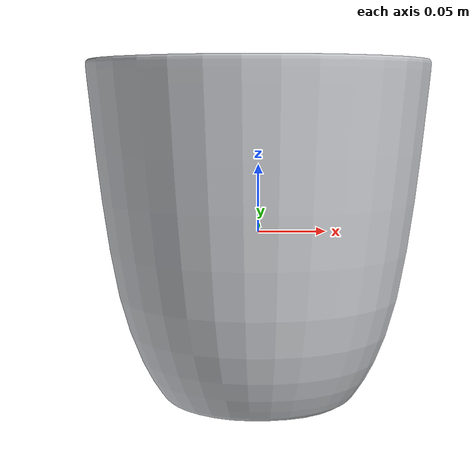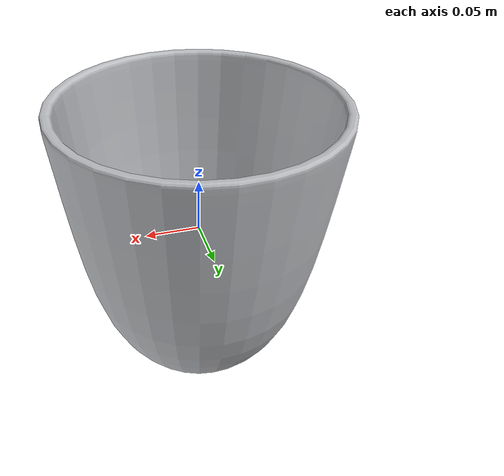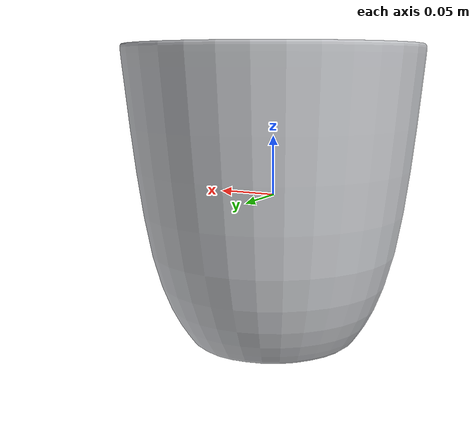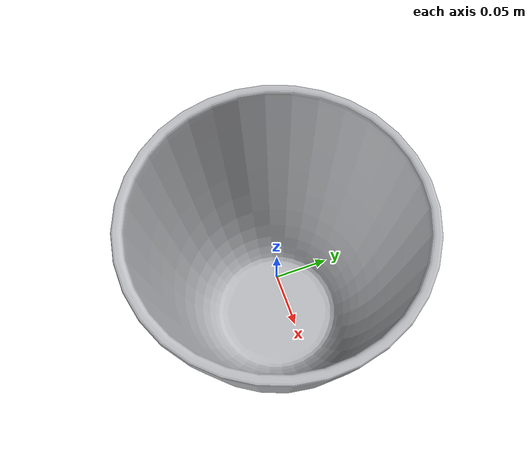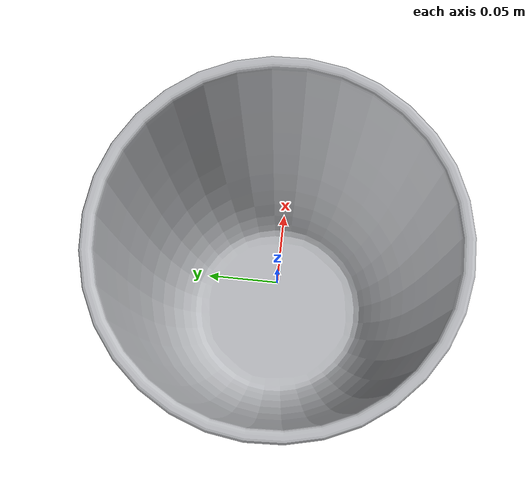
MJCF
<?xml version="1.0" ?>
<mujoco model="flowerpot">
	<compiler meshdir="flowerpot/meshes" texturedir="flowerpot/textures" angle="radian" autolimits="true" balanceinertia="true" boundmass="0.000001" boundinertia="0.000001"/>
	<default>
		<default class="visual">
			<geom contype="0" conaffinity="0"/>
		</default>
		<default class="collision">
			<geom rgba="1.0 0.0 0.0 0.0"/>
		</default>
	</default>
	<asset>
		<mesh name="Flowerpot" file="stl/Flowerpot.stl" scale="1.0 1.0 1.0"/>
		<mesh name="Flowerpot_001" file="stl/Flowerpot_001.stl" scale="1.0 1.0 1.0"/>
		<mesh name="Flowerpot_002" file="stl/Flowerpot_002.stl" scale="1.0 1.0 1.0"/>
		<mesh name="Flowerpot_003" file="stl/Flowerpot_003.stl" scale="1.0 1.0 1.0"/>
		<mesh name="Flowerpot_004" file="stl/Flowerpot_004.stl" scale="1.0 1.0 1.0"/>
		<mesh name="Flowerpot_005" file="stl/Flowerpot_005.stl" scale="1.0 1.0 1.0"/>
		<mesh name="Flowerpot_006" file="stl/Flowerpot_006.stl" scale="1.0 1.0 1.0"/>
		<mesh name="Flowerpot_007" file="stl/Flowerpot_007.stl" scale="1.0 1.0 1.0"/>
		<mesh name="Flowerpot_008" file="stl/Flowerpot_008.stl" scale="1.0 1.0 1.0"/>
		<mesh name="Flowerpot_009" file="stl/Flowerpot_009.stl" scale="1.0 1.0 1.0"/>
		<mesh name="Flowerpot_010" file="stl/Flowerpot_010.stl" scale="1.0 1.0 1.0"/>
		<mesh name="Flowerpot_011" file="stl/Flowerpot_011.stl" scale="1.0 1.0 1.0"/>
		<mesh name="Flowerpot_012" file="stl/Flowerpot_012.stl" scale="1.0 1.0 1.0"/>
		<mesh name="Flowerpot_013" file="stl/Flowerpot_013.stl" scale="1.0 1.0 1.0"/>
		<mesh name="Flowerpot_014" file="stl/Flowerpot_014.stl" scale="1.0 1.0 1.0"/>
		<mesh name="Flowerpot_015" file="stl/Flowerpot_015.stl" scale="1.0 1.0 1.0"/>
		<mesh name="Flowerpot_016" file="stl/Flowerpot_016.stl" scale="1.0 1.0 1.0"/>
		<mesh name="Flowerpot_017" file="stl/Flowerpot_017.stl" scale="1.0 1.0 1.0"/>
		<mesh name="Flowerpot_018" file="stl/Flowerpot_018.stl" scale="1.0 1.0 1.0"/>
		<mesh name="Flowerpot_019" file="stl/Flowerpot_019.stl" scale="1.0 1.0 1.0"/>
		<mesh name="Flowerpot_020" file="stl/Flowerpot_020.stl" scale="1.0 1.0 1.0"/>
		<mesh name="Flowerpot_021" file="stl/Flowerpot_021.stl" scale="1.0 1.0 1.0"/>
		<mesh name="Flowerpot_022" file="stl/Flowerpot_022.stl" scale="1.0 1.0 1.0"/>
		<mesh name="Flowerpot_023" file="stl/Flowerpot_023.stl" scale="1.0 1.0 1.0"/>
		<mesh name="Flowerpot_024" file="stl/Flowerpot_024.stl" scale="1.0 1.0 1.0"/>
		<mesh name="Flowerpot_025" file="stl/Flowerpot_025.stl" scale="1.0 1.0 1.0"/>
		<mesh name="Flowerpot_026" file="stl/Flowerpot_026.stl" scale="1.0 1.0 1.0"/>
		<mesh name="Flowerpot_027" file="stl/Flowerpot_027.stl" scale="1.0 1.0 1.0"/>
		<mesh name="Flowerpot_028" file="stl/Flowerpot_028.stl" scale="1.0 1.0 1.0"/>
		<mesh name="Flowerpot_029" file="stl/Flowerpot_029.stl" scale="1.0 1.0 1.0"/>
		<mesh name="Flowerpot_030" file="stl/Flowerpot_030.stl" scale="1.0 1.0 1.0"/>
		<mesh name="Flowerpot_031" file="stl/Flowerpot_031.stl" scale="1.0 1.0 1.0"/>
		<mesh name="Flowerpot_032" file="stl/Flowerpot_032.stl" scale="1.0 1.0 1.0"/>
		<mesh name="Flowerpot_033" file="stl/Flowerpot_033.stl" scale="1.0 1.0 1.0"/>
		<mesh name="Flowerpot_034" file="stl/Flowerpot_034.stl" scale="1.0 1.0 1.0"/>
		<mesh name="Flowerpot_035" file="stl/Flowerpot_035.stl" scale="1.0 1.0 1.0"/>
		<mesh name="Flowerpot_036" file="stl/Flowerpot_036.stl" scale="1.0 1.0 1.0"/>
		<mesh name="Flowerpot_037" file="stl/Flowerpot_037.stl" scale="1.0 1.0 1.0"/>
		<mesh name="Flowerpot_038" file="stl/Flowerpot_038.stl" scale="1.0 1.0 1.0"/>
		<mesh name="Flowerpot_039" file="stl/Flowerpot_039.stl" scale="1.0 1.0 1.0"/>
		<mesh name="Flowerpot_040" file="stl/Flowerpot_040.stl" scale="1.0 1.0 1.0"/>
		<mesh name="Flowerpot_041" file="stl/Flowerpot_041.stl" scale="1.0 1.0 1.0"/>
		<mesh name="Flowerpot_042" file="stl/Flowerpot_042.stl" scale="1.0 1.0 1.0"/>
		<mesh name="Flowerpot_043" file="stl/Flowerpot_043.stl" scale="1.0 1.0 1.0"/>
		<mesh name="Flowerpot_044" file="stl/Flowerpot_044.stl" scale="1.0 1.0 1.0"/>
		<mesh name="Flowerpot_045" file="stl/Flowerpot_045.stl" scale="1.0 1.0 1.0"/>
		<mesh name="Flowerpot_046" file="stl/Flowerpot_046.stl" scale="1.0 1.0 1.0"/>
		<mesh name="Flowerpot_047" file="stl/Flowerpot_047.stl" scale="1.0 1.0 1.0"/>
		<mesh name="Flowerpot_048" file="stl/Flowerpot_048.stl" scale="1.0 1.0 1.0"/>
		<mesh name="Flowerpot_049" file="stl/Flowerpot_049.stl" scale="1.0 1.0 1.0"/>
		<mesh name="Flowerpot_050" file="stl/Flowerpot_050.stl" scale="1.0 1.0 1.0"/>
		<mesh name="Flowerpot_051" file="stl/Flowerpot_051.stl" scale="1.0 1.0 1.0"/>
		<mesh name="Flowerpot_052" file="stl/Flowerpot_052.stl" scale="1.0 1.0 1.0"/>
		<mesh name="Flowerpot_053" file="stl/Flowerpot_053.stl" scale="1.0 1.0 1.0"/>
		<material name="M_Flowerpot" rgba="0.7376999855041504 0.7451000213623047 0.7609000205993652 1.0" emission="0.0"/>
	</asset>
	<worldbody>
		<body name="flowerpot" pos="0.0 0.0 0.0" quat="1.0 0.0 0.0 0.0">
			<inertial mass="3.7099127769470215" pos="3.031487949556322e-08 -1.117605652467546e-08 0.0027141293976455927" quat="0.6975465416908264 0.11588457971811295 -0.6975463628768921 0.115882009267807" diaginertia="0.03945529833436012 0.04177573695778847 0.041775744408369064"/>
			<geom name="Flowerpot" type="mesh" pos="0.0 0.0 0.0" quat="1.0 0.0 0.0 0.0" mesh="Flowerpot" material="M_Flowerpot" class="visual"/>
			<geom name="Flowerpot_001" type="mesh" pos="0.0 0.0 0.0" quat="1.0 0.0 0.0 0.0" mesh="Flowerpot_001" class="collision"/>
			<geom name="Flowerpot_002" type="mesh" pos="0.0 0.0 0.0" quat="1.0 0.0 0.0 0.0" mesh="Flowerpot_002" class="collision"/>
			<geom name="Flowerpot_003" type="mesh" pos="0.0 0.0 0.0" quat="1.0 0.0 0.0 0.0" mesh="Flowerpot_003" class="collision"/>
			<geom name="Flowerpot_004" type="mesh" pos="0.0 0.0 0.0" quat="1.0 0.0 0.0 0.0" mesh="Flowerpot_004" class="collision"/>
			<geom name="Flowerpot_005" type="mesh" pos="0.0 0.0 0.0" quat="1.0 0.0 0.0 0.0" mesh="Flowerpot_005" class="collision"/>
			<geom name="Flowerpot_006" type="mesh" pos="0.0 0.0 0.0" quat="1.0 0.0 0.0 0.0" mesh="Flowerpot_006" class="collision"/>
			<geom name="Flowerpot_007" type="mesh" pos="0.0 0.0 0.0" quat="1.0 0.0 0.0 0.0" mesh="Flowerpot_007" class="collision"/>
			<geom name="Flowerpot_008" type="mesh" pos="0.0 0.0 0.0" quat="1.0 0.0 0.0 0.0" mesh="Flowerpot_008" class="collision"/>
			<geom name="Flowerpot_009" type="mesh" pos="0.0 0.0 0.0" quat="1.0 0.0 0.0 0.0" mesh="Flowerpot_009" class="collision"/>
			<geom name="Flowerpot_010" type="mesh" pos="0.0 0.0 0.0" quat="1.0 0.0 0.0 0.0" mesh="Flowerpot_010" class="collision"/>
			<geom name="Flowerpot_011" type="mesh" pos="0.0 0.0 0.0" quat="1.0 0.0 0.0 0.0" mesh="Flowerpot_011" class="collision"/>
			<geom name="Flowerpot_012" type="mesh" pos="0.0 0.0 0.0" quat="1.0 0.0 0.0 0.0" mesh="Flowerpot_012" class="collision"/>
			<geom name="Flowerpot_013" type="mesh" pos="0.0 0.0 0.0" quat="1.0 0.0 0.0 0.0" mesh="Flowerpot_013" class="collision"/>
			<geom name="Flowerpot_014" type="mesh" pos="0.0 0.0 0.0" quat="1.0 0.0 0.0 0.0" mesh="Flowerpot_014" class="collision"/>
			<geom name="Flowerpot_015" type="mesh" pos="0.0 0.0 0.0" quat="1.0 0.0 0.0 0.0" mesh="Flowerpot_015" class="collision"/>
			<geom name="Flowerpot_016" type="mesh" pos="0.0 0.0 0.0" quat="1.0 0.0 0.0 0.0" mesh="Flowerpot_016" class="collision"/>
			<geom name="Flowerpot_017" type="mesh" pos="0.0 0.0 0.0" quat="1.0 0.0 0.0 0.0" mesh="Flowerpot_017" class="collision"/>
			<geom name="Flowerpot_018" type="mesh" pos="0.0 0.0 0.0" quat="1.0 0.0 0.0 0.0" mesh="Flowerpot_018" class="collision"/>
			<geom name="Flowerpot_019" type="mesh" pos="0.0 0.0 0.0" quat="1.0 0.0 0.0 0.0" mesh="Flowerpot_019" class="collision"/>
			<geom name="Flowerpot_020" type="mesh" pos="0.0 0.0 0.0" quat="1.0 0.0 0.0 0.0" mesh="Flowerpot_020" class="collision"/>
			<geom name="Flowerpot_021" type="mesh" pos="0.0 0.0 0.0" quat="1.0 0.0 0.0 0.0" mesh="Flowerpot_021" class="collision"/>
			<geom name="Flowerpot_022" type="mesh" pos="0.0 0.0 0.0" quat="1.0 0.0 0.0 0.0" mesh="Flowerpot_022" class="collision"/>
			<geom name="Flowerpot_023" type="mesh" pos="0.0 0.0 0.0" quat="1.0 0.0 0.0 0.0" mesh="Flowerpot_023" class="collision"/>
			<geom name="Flowerpot_024" type="mesh" pos="0.0 0.0 0.0" quat="1.0 0.0 0.0 0.0" mesh="Flowerpot_024" class="collision"/>
			<geom name="Flowerpot_025" type="mesh" pos="0.0 0.0 0.0" quat="1.0 0.0 0.0 0.0" mesh="Flowerpot_025" class="collision"/>
			<geom name="Flowerpot_026" type="mesh" pos="0.0 0.0 0.0" quat="1.0 0.0 0.0 0.0" mesh="Flowerpot_026" class="collision"/>
			<geom name="Flowerpot_027" type="mesh" pos="0.0 0.0 0.0" quat="1.0 0.0 0.0 0.0" mesh="Flowerpot_027" class="collision"/>
			<geom name="Flowerpot_028" type="mesh" pos="0.0 0.0 0.0" quat="1.0 0.0 0.0 0.0" mesh="Flowerpot_028" class="collision"/>
			<geom name="Flowerpot_029" type="mesh" pos="0.0 0.0 0.0" quat="1.0 0.0 0.0 0.0" mesh="Flowerpot_029" class="collision"/>
			<geom name="Flowerpot_030" type="mesh" pos="0.0 0.0 0.0" quat="1.0 0.0 0.0 0.0" mesh="Flowerpot_030" class="collision"/>
			<geom name="Flowerpot_031" type="mesh" pos="0.0 0.0 0.0" quat="1.0 0.0 0.0 0.0" mesh="Flowerpot_031" class="collision"/>
			<geom name="Flowerpot_032" type="mesh" pos="0.0 0.0 0.0" quat="1.0 0.0 0.0 0.0" mesh="Flowerpot_032" class="collision"/>
			<geom name="Flowerpot_033" type="mesh" pos="0.0 0.0 0.0" quat="1.0 0.0 0.0 0.0" mesh="Flowerpot_033" class="collision"/>
			<geom name="Flowerpot_034" type="mesh" pos="0.0 0.0 0.0" quat="1.0 0.0 0.0 0.0" mesh="Flowerpot_034" class="collision"/>
			<geom name="Flowerpot_035" type="mesh" pos="0.0 0.0 0.0" quat="1.0 0.0 0.0 0.0" mesh="Flowerpot_035" class="collision"/>
			<geom name="Flowerpot_036" type="mesh" pos="0.0 0.0 0.0" quat="1.0 0.0 0.0 0.0" mesh="Flowerpot_036" class="collision"/>
			<geom name="Flowerpot_037" type="mesh" pos="0.0 0.0 0.0" quat="1.0 0.0 0.0 0.0" mesh="Flowerpot_037" class="collision"/>
			<geom name="Flowerpot_038" type="mesh" pos="0.0 0.0 0.0" quat="1.0 0.0 0.0 0.0" mesh="Flowerpot_038" class="collision"/>
			<geom name="Flowerpot_039" type="mesh" pos="0.0 0.0 0.0" quat="1.0 0.0 0.0 0.0" mesh="Flowerpot_039" class="collision"/>
			<geom name="Flowerpot_040" type="mesh" pos="0.0 0.0 0.0" quat="1.0 0.0 0.0 0.0" mesh="Flowerpot_040" class="collision"/>
			<geom name="Flowerpot_041" type="mesh" pos="0.0 0.0 0.0" quat="1.0 0.0 0.0 0.0" mesh="Flowerpot_041" class="collision"/>
			<geom name="Flowerpot_042" type="mesh" pos="0.0 0.0 0.0" quat="1.0 0.0 0.0 0.0" mesh="Flowerpot_042" class="collision"/>
			<geom name="Flowerpot_043" type="mesh" pos="0.0 0.0 0.0" quat="1.0 0.0 0.0 0.0" mesh="Flowerpot_043" class="collision"/>
			<geom name="Flowerpot_044" type="mesh" pos="0.0 0.0 0.0" quat="1.0 0.0 0.0 0.0" mesh="Flowerpot_044" class="collision"/>
			<geom name="Flowerpot_045" type="mesh" pos="0.0 0.0 0.0" quat="1.0 0.0 0.0 0.0" mesh="Flowerpot_045" class="collision"/>
			<geom name="Flowerpot_046" type="mesh" pos="0.0 0.0 0.0" quat="1.0 0.0 0.0 0.0" mesh="Flowerpot_046" class="collision"/>
			<geom name="Flowerpot_047" type="mesh" pos="0.0 0.0 0.0" quat="1.0 0.0 0.0 0.0" mesh="Flowerpot_047" class="collision"/>
			<geom name="Flowerpot_048" type="mesh" pos="0.0 0.0 0.0" quat="1.0 0.0 0.0 0.0" mesh="Flowerpot_048" class="collision"/>
			<geom name="Flowerpot_049" type="mesh" pos="0.0 0.0 0.0" quat="1.0 0.0 0.0 0.0" mesh="Flowerpot_049" class="collision"/>
			<geom name="Flowerpot_050" type="mesh" pos="0.0 0.0 0.0" quat="1.0 0.0 0.0 0.0" mesh="Flowerpot_050" class="collision"/>
			<geom name="Flowerpot_051" type="mesh" pos="0.0 0.0 0.0" quat="1.0 0.0 0.0 0.0" mesh="Flowerpot_051" class="collision"/>
			<geom name="Flowerpot_052" type="mesh" pos="0.0 0.0 0.0" quat="1.0 0.0 0.0 0.0" mesh="Flowerpot_052" class="collision"/>
			<geom name="Flowerpot_053" type="mesh" pos="0.0 0.0 0.0" quat="1.0 0.0 0.0 0.0" mesh="Flowerpot_053" class="collision"/>
		</body>
	</worldbody>
	<equality/>
</mujoco>
